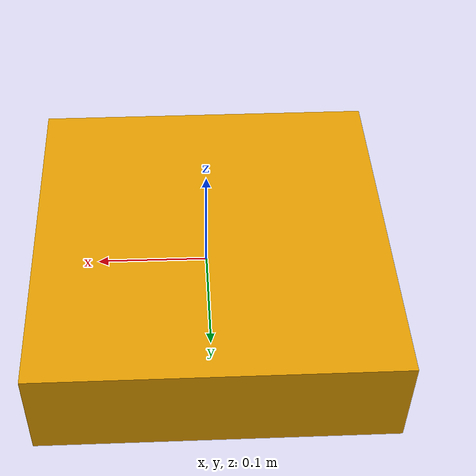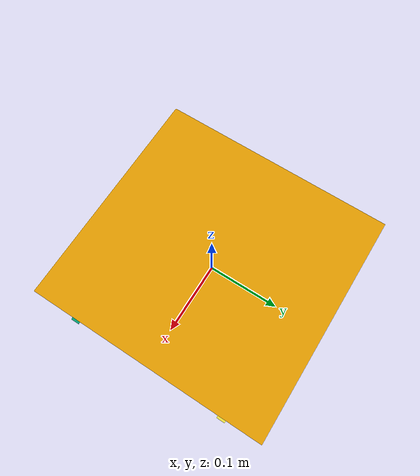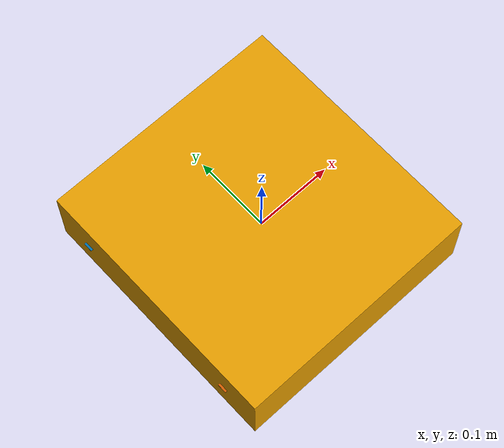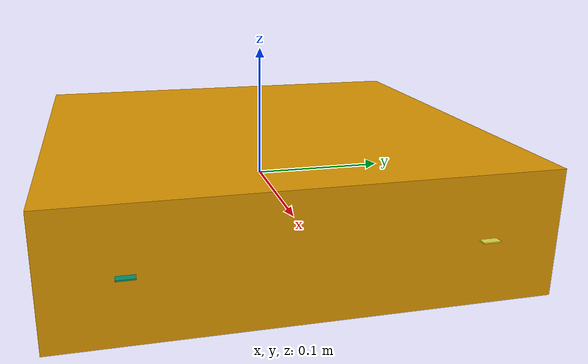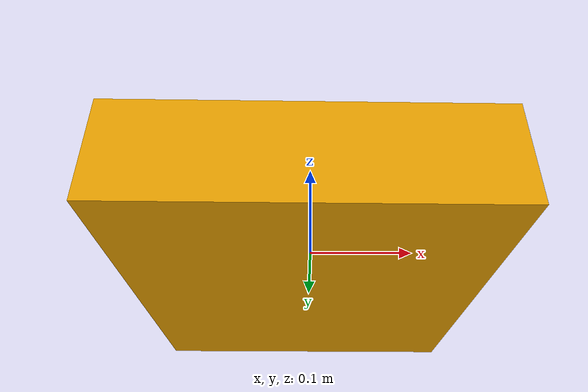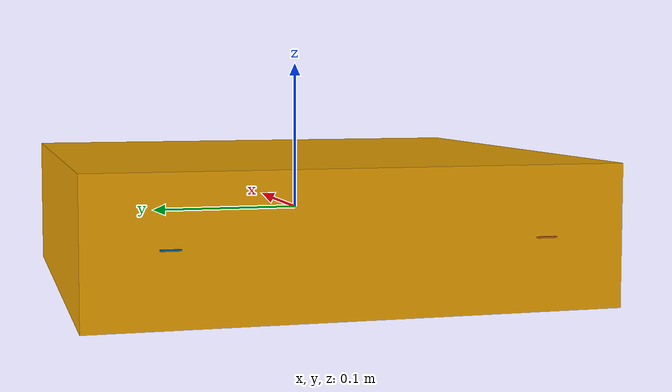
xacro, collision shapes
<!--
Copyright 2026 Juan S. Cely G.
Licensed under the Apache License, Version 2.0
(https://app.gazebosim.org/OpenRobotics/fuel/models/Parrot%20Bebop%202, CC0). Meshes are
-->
<?xml version="1.0"?>
<robot xmlns:xacro="http://www.ros.org/wiki/xacro" name="bebop2">

  <xacro:include filename="common.xacro"/>

  <xacro:arg name="name" default="bebop2"/>
  <xacro:arg name="cameras" default="true"/>
  <xacro:property name="name" value="$(arg name)"/>

  <xacro:property name="mesh_uri"
                  value="https://fuel.gazebosim.org/1.0/OpenRobotics/models/Parrot%20Bebop%202/3/files/meshes"/>

  <!-- Total mass 0.503 kg: frame + 4 propellers -->
  <xacro:property name="rotor_mass" value="0.003"/>
  <xacro:property name="body_mass" value="${0.503 - 4 * rotor_mass}"/>

  <!-- Propeller: radius 0.075 m, modelled as a 0.15 x 0.012 x 0.004 m box -->
  <xacro:property name="prop_length" value="0.15"/>
  <xacro:property name="prop_width" value="0.012"/>
  <xacro:property name="prop_height" value="0.004"/>

  <!-- Motors (MulticopterMotorModel) -->
  <xacro:property name="motor" value="${dict(
    motor_constant=1.9006e-06, moment_constant=0.010891, max_rot_velocity=1250.0,
    time_constant_up=0.0125, time_constant_down=0.025,
    rotor_drag_coefficient=3.96215e-05, rolling_moment_coefficient=4.64449e-06)}"/>

  <!-- ============================== Frame ============================== -->

  <!-- base_link has no inertia (KDL does not support it in the root link); the frame mass
       is in base_inertia, which Gazebo merges into base_link -->
  <link name="base_link">
    <visual>
      <origin xyz="0 0 0" rpy="0 0 0"/>
      <geometry>
        <mesh filename="${mesh_uri}/hull.dae"/>
      </geometry>
    </visual>
    <collision name="body">
      <origin xyz="-0.00424 0.00014 -0.00595" rpy="0 0 0"/>
      <geometry>
        <box size="0.316618 0.330564 0.089582"/>
      </geometry>
    </collision>
  </link>

  <link name="base_inertia">
    <inertial>
      <origin xyz="0 0 0" rpy="0 0 0"/>
      <mass value="${body_mass}"/>
      <inertia ixx="1.805e-3" ixy="-8.619e-7" ixz="1.555e-5"
               iyy="1.764e-3" iyz="3.595e-7" izz="3.328e-3"/>
    </inertial>
  </link>
  <joint name="base_inertia_joint" type="fixed">
    <parent link="base_link"/>
    <child link="base_inertia"/>
    <origin xyz="0 0 0" rpy="0 0 0"/>
  </joint>

  <gazebo reference="base_link">
    <minDepth>0.001</minDepth>
    <maxVel>0</maxVel>
  </gazebo>

  <!-- ============================== Rotors ============================== -->

  <!-- position: fr, fl, rl, rr (name of the propeller mesh) -->
  <xacro:macro name="bebop2_rotor" params="index x y position direction">
    <xacro:pilotaro_rotor robot="${name}" index="${index}" x="${x}" y="${y}" z="-0.00501"
                          direction="${direction}" mass="${rotor_mass}"
                          ixx="${rotor_mass * (prop_width ** 2 + prop_height ** 2) / 12.0}"
                          iyy="${rotor_mass * (prop_length ** 2 + prop_height ** 2) / 12.0}"
                          izz="${rotor_mass * (prop_length ** 2 + prop_width ** 2) / 12.0}"
                          length="${prop_length}" width="${prop_width}" motor="${motor}">
      <visuals>
        <visual>
          <origin xyz="0 0 0" rpy="0 0 0"/>
          <geometry>
            <mesh filename="${mesh_uri}/propeller_${position}.dae"/>
          </geometry>
        </visual>
      </visuals>
    </xacro:pilotaro_rotor>
  </xacro:macro>

  <!-- Parrot order: front right, front left, rear left, rear right -->
  <xacro:bebop2_rotor index="0" x="0.08456" y="-0.11435" position="fr" direction="ccw"/>
  <xacro:bebop2_rotor index="1" x="0.08456" y="0.11463" position="fl" direction="cw"/>
  <xacro:bebop2_rotor index="2" x="-0.09035" y="0.11452" position="rl" direction="ccw"/>
  <xacro:bebop2_rotor index="3" x="-0.09035" y="-0.11423" position="rr" direction="cw"/>

  <!-- ============================== Sensors ============================== -->

  <xacro:pilotaro_imu robot="${name}" rate="250"/>
  <xacro:pilotaro_air_pressure robot="${name}" rate="50"/>
  <xacro:pilotaro_magnetometer robot="${name}" rate="50"/>
  <xacro:pilotaro_navsat robot="${name}" rate="10"/>

  <!-- Ultrasonic altimeter, up to 8 m -->
  <xacro:pilotaro_rangefinder robot="${name}" prefix="sonar" x="0.0" y="0.0" z="-0.046"
                              range_min="0.25" range_max="8.0" rate="30"/>

  <xacro:if value="$(arg cameras)">
    <!-- Front camera: stabilized 1280x720 stream, about 80 deg of horizontal field of view.
         Vertical camera: 320x240 optical flow camera -->
    <xacro:pilotaro_camera robot="${name}" prefix="camera_front" x="0.11" y="0" z="0.0"
                           roll="0" pitch="0" width="1280" height="720" hfov="1.3963" rate="30"/>
    <xacro:pilotaro_camera robot="${name}" prefix="camera_down" x="0.0" y="0" z="-0.046"
                           roll="0" pitch="${pi / 2}" width="320" height="240" hfov="1.1170"
                           rate="30"/>
  </xacro:if>

  <xacro:pilotaro_odometry robot="${name}" rate="250"/>

</robot>

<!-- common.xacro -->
<robot xmlns:xacro="http://www.ros.org/wiki/xacro">

  <!-- Inertia of a solid box -->
  <xacro:macro name="pilotaro_box_inertia" params="mass x y z">
    <inertial>
      <mass value="${mass}"/>
      <inertia ixx="${mass * (y * y + z * z) / 12.0}" ixy="0" ixz="0"
               iyy="${mass * (x * x + z * z) / 12.0}" iyz="0"
               izz="${mass * (x * x + y * y) / 12.0}"/>
    </inertial>
  </xacro:macro>

  <!-- ============================== Rotor ============================== -->

  <xacro:macro name="pilotaro_rotor"
               params="robot index x y z direction mass ixx iyy izz length width motor **visuals">
    <link name="rotor_${index}">
      <inertial>
        <origin xyz="0 0 0" rpy="0 0 0"/>
        <mass value="${mass}"/>
        <inertia ixx="${ixx}" ixy="0" ixz="0" iyy="${iyy}" iyz="0" izz="${izz}"/>
      </inertial>
      <xacro:insert_block name="visuals"/>
      <collision>
        <origin xyz="0 0 0" rpy="0 0 0"/>
        <geometry>
          <box size="${length} ${width} 0.0008461538461538462"/>
        </geometry>
      </collision>
    </link>
    <joint name="rotor_${index}_joint" type="continuous">
      <parent link="base_link"/>
      <child link="rotor_${index}"/>
      <origin xyz="${x} ${y} ${z}" rpy="0 0 0"/>
      <axis xyz="0 0 1"/>
    </joint>
    <gazebo>
      <plugin filename="gz-sim-multicopter-motor-model-system"
              name="gz::sim::systems::MulticopterMotorModel">
        <robotNamespace>${robot}</robotNamespace>
        <jointName>rotor_${index}_joint</jointName>
        <linkName>rotor_${index}</linkName>
        <turningDirection>${direction}</turningDirection>
        <timeConstantUp>${motor['time_constant_up']}</timeConstantUp>
        <timeConstantDown>${motor['time_constant_down']}</timeConstantDown>
        <maxRotVelocity>${motor['max_rot_velocity']}</maxRotVelocity>
        <motorConstant>${motor['motor_constant']}</motorConstant>
        <momentConstant>${motor['moment_constant']}</momentConstant>
        <commandSubTopic>command/motor_speed</commandSubTopic>
        <actuator_number>${index}</actuator_number>
        <rotorDragCoefficient>${motor['rotor_drag_coefficient']}</rotorDragCoefficient>
        <rollingMomentCoefficient>${motor['rolling_moment_coefficient']}</rollingMomentCoefficient>
        <motorSpeedPubTopic>motor_speed/${index}</motorSpeedPubTopic>
        <rotorVelocitySlowdownSim>10</rotorVelocitySlowdownSim>
        <motorType>velocity</motorType>
      </plugin>
    </gazebo>
  </xacro:macro>

  <!-- ============================== Thruster ============================== -->

  <xacro:macro name="pilotaro_thruster"
               params="robot index x y z roll pitch yaw direction thruster **visuals">
    <link name="thruster_${index}">
      <inertial>
        <origin xyz="0 0 0" rpy="0 0 0"/>
        <mass value="0.002"/>
        <inertia ixx="0.001" ixy="0" ixz="0" iyy="0.001" iyz="0" izz="0.001"/>
      </inertial>
      <xacro:insert_block name="visuals"/>
    </link>
    <joint name="thruster_${index}_joint" type="continuous">
      <parent link="base_link"/>
      <child link="thruster_${index}"/>
      <origin xyz="${x} ${y} ${z}" rpy="${roll} ${pitch} ${yaw}"/>
      <axis xyz="0 0 1"/>
    </joint>
    <gazebo>
      <plugin filename="gz-sim-thruster-system" name="gz::sim::systems::Thruster">
        <namespace>${robot}</namespace>
        <joint_name>thruster_${index}_joint</joint_name>
        <topic>thruster_${index}/cmd_thrust</topic>
        <thrust_coefficient>${direction * thruster['thrust_coefficient']}</thrust_coefficient>
        <fluid_density>${thruster['fluid_density']}</fluid_density>
        <propeller_diameter>${thruster['propeller_diameter']}</propeller_diameter>
        <velocity_control>true</velocity_control>
        <max_thrust_cmd>${thruster['max_thrust']}</max_thrust_cmd>
        <min_thrust_cmd>${-thruster['max_thrust']}</min_thrust_cmd>
      </plugin>
    </gazebo>
  </xacro:macro>

  <!-- ============================== Hydrodynamics ============================== -->

  <xacro:macro name="pilotaro_hydrodynamics" params="link hydro">
    <gazebo>
      <plugin filename="gz-sim-hydrodynamics-system" name="gz::sim::systems::Hydrodynamics">
        <link_name>${link}</link_name>
        <water_density>${hydro['water_density']}</water_density>
        <disable_added_mass>true</disable_added_mass>
        <xDotU>${hydro['xDotU']}</xDotU>
        <yDotV>${hydro['yDotV']}</yDotV>
        <zDotW>${hydro['zDotW']}</zDotW>
        <kDotP>${hydro['kDotP']}</kDotP>
        <mDotQ>${hydro['mDotQ']}</mDotQ>
        <nDotR>${hydro['nDotR']}</nDotR>
        <xU>${hydro['xU']}</xU>
        <yV>${hydro['yV']}</yV>
        <zW>${hydro['zW']}</zW>
        <kP>${hydro['kP']}</kP>
        <mQ>${hydro['mQ']}</mQ>
        <nR>${hydro['nR']}</nR>
        <xUabsU>${hydro['xUabsU']}</xUabsU>
        <yVabsV>${hydro['yVabsV']}</yVabsV>
        <zWabsW>${hydro['zWabsW']}</zWabsW>
        <kPabsP>${hydro['kPabsP']}</kPabsP>
        <mQabsQ>${hydro['mQabsQ']}</mQabsQ>
        <nRabsR>${hydro['nRabsR']}</nRabsR>
      </plugin>
    </gazebo>
  </xacro:macro>

  <!-- ============================== IMU ============================== -->

  <xacro:macro name="pilotaro_imu_noise"
               params="stddev bias_mean bias_stddev dynamic_bias_stddev correlation_time precision">
    <noise type="gaussian">
      <mean>0</mean>
      <stddev>${stddev}</stddev>
      <bias_mean>${bias_mean}</bias_mean>
      <bias_stddev>${bias_stddev}</bias_stddev>
      <dynamic_bias_stddev>${dynamic_bias_stddev}</dynamic_bias_stddev>
      <dynamic_bias_correlation_time>${correlation_time}</dynamic_bias_correlation_time>
      <precision>${precision}</precision>
    </noise>
  </xacro:macro>
  <xacro:macro name="pilotaro_gyro_noise">
    <xacro:pilotaro_imu_noise stddev="0.009" bias_mean="0.00075" bias_stddev="0.005"
                              dynamic_bias_stddev="0.00002" correlation_time="400.0"
                              precision="0.00025"/>
  </xacro:macro>
  <xacro:macro name="pilotaro_accel_noise">
    <xacro:pilotaro_imu_noise stddev="0.021" bias_mean="0.05" bias_stddev="0.0075"
                              dynamic_bias_stddev="0.000375" correlation_time="175.0"
                              precision="0.005"/>
  </xacro:macro>

  <xacro:macro name="pilotaro_imu" params="robot rate:=250">
    <link name="imu_link"/>
    <joint name="imu_joint" type="fixed">
      <parent link="base_link"/>
      <child link="imu_link"/>
      <origin xyz="0 0 0" rpy="0 0 0"/>
    </joint>
    <gazebo reference="base_link">
      <sensor name="imu" type="imu">
        <always_on>1</always_on>
        <update_rate>${rate}</update_rate>
        <topic>/${robot}/imu</topic>
        <gz_frame_id>${robot}/imu_link</gz_frame_id>
        <imu>
          <enable_orientation>0</enable_orientation>
          <angular_velocity>
            <x><xacro:pilotaro_gyro_noise/></x>
            <y><xacro:pilotaro_gyro_noise/></y>
            <z><xacro:pilotaro_gyro_noise/></z>
          </angular_velocity>
          <linear_acceleration>
            <x><xacro:pilotaro_accel_noise/></x>
            <y><xacro:pilotaro_accel_noise/></y>
            <z><xacro:pilotaro_accel_noise/></z>
          </linear_acceleration>
        </imu>
      </sensor>
    </gazebo>
  </xacro:macro>

  <!-- ============================== Barometer, magnetometer, GPS ============================== -->

  <xacro:macro name="pilotaro_air_pressure" params="robot rate:=50">
    <gazebo reference="base_link">
      <sensor name="air_pressure" type="air_pressure">
        <always_on>1</always_on>
        <update_rate>${rate}</update_rate>
        <topic>/${robot}/air_pressure</topic>
        <gz_frame_id>${robot}/base_link</gz_frame_id>
        <air_pressure>
          <reference_altitude>0</reference_altitude>
          <pressure>
            <noise type="gaussian">
              <mean>0</mean>
              <stddev>0.01</stddev>
            </noise>
          </pressure>
        </air_pressure>
      </sensor>
    </gazebo>
  </xacro:macro>

  <xacro:macro name="pilotaro_magnetometer" params="robot rate:=50">
    <gazebo reference="base_link">
      <sensor name="magnetometer" type="magnetometer">
        <always_on>1</always_on>
        <update_rate>${rate}</update_rate>
        <topic>/${robot}/magnetometer</topic>
        <gz_frame_id>${robot}/base_link</gz_frame_id>
        <magnetometer>
          <x><noise type="gaussian"><mean>0.000000080</mean><bias_mean>0.000000400</bias_mean></noise></x>
          <y><noise type="gaussian"><mean>0.000000080</mean><bias_mean>0.000000400</bias_mean></noise></y>
          <z><noise type="gaussian"><mean>0.000000080</mean><bias_mean>0.000000400</bias_mean></noise></z>
        </magnetometer>
      </sensor>
    </gazebo>
  </xacro:macro>

  <xacro:macro name="pilotaro_navsat" params="robot rate:=10">
    <gazebo reference="base_link">
      <sensor name="navsat" type="navsat">
        <always_on>1</always_on>
        <update_rate>${rate}</update_rate>
        <topic>/${robot}/navsat</topic>
        <gz_frame_id>${robot}/base_link</gz_frame_id>
        <navsat>
          <position_sensing>
            <!-- gz applies the horizontal noise to latitude/longitude in degrees:
                 4.5e-6 deg ~ 0.5 m. The vertical noise is in meters -->
            <horizontal>
              <noise type="gaussian"><mean>0.0</mean><stddev>4.5e-6</stddev></noise>
            </horizontal>
            <vertical>
              <noise type="gaussian"><mean>0.0</mean><stddev>1.0</stddev></noise>
            </vertical>
          </position_sensing>
          <velocity_sensing>
            <horizontal>
              <noise type="gaussian"><mean>0.0</mean><stddev>0.1</stddev></noise>
            </horizontal>
            <vertical>
              <noise type="gaussian"><mean>0.0</mean><stddev>0.1</stddev></noise>
            </vertical>
          </velocity_sensing>
        </navsat>
      </sensor>
    </gazebo>
  </xacro:macro>

  <!-- ============================== Camera ============================== -->

  <xacro:macro name="pilotaro_camera"
               params="robot prefix x y z roll pitch width height hfov rate mass:=0.0 size:=0.0">
    <link name="${prefix}_link">
      <xacro:if value="${mass > 0.0}">
        <xacro:pilotaro_box_inertia mass="${mass}" x="${size}" y="${2.5 * size}" z="${size}"/>
      </xacro:if>
      <xacro:if value="${size > 0.0}">
        <visual>
          <geometry>
            <box size="${size} ${2.5 * size} ${size}"/>
          </geometry>
          <material name="black">
            <color rgba="0.05 0.05 0.05 1"/>
          </material>
        </visual>
      </xacro:if>
    </link>
    <joint name="${prefix}_joint" type="fixed">
      <parent link="base_link"/>
      <child link="${prefix}_link"/>
      <origin xyz="${x} ${y} ${z}" rpy="${roll} ${pitch} 0"/>
    </joint>
    <gazebo reference="base_link">
      <sensor name="${prefix}" type="camera">
        <pose>${x} ${y} ${z} ${roll} ${pitch} 0</pose>
        <always_on>1</always_on>
        <update_rate>${rate}</update_rate>
        <topic>/${robot}/${prefix}/image</topic>
        <gz_frame_id>${robot}/${prefix}_link</gz_frame_id>
        <camera name="${prefix}">
          <camera_info_topic>/${robot}/${prefix}/camera_info</camera_info_topic>
          <horizontal_fov>${hfov}</horizontal_fov>
          <image>
            <width>${width}</width>
            <height>${height}</height>
            <format>R8G8B8</format>
          </image>
          <clip>
            <near>0.05</near>
            <far>300</far>
          </clip>
          <noise>
            <type>gaussian</type>
            <mean>0</mean>
            <stddev>0.007</stddev>
          </noise>
        </camera>
      </sensor>
    </gazebo>
  </xacro:macro>

  <!-- ============================== Rangefinder ============================== -->

  <xacro:macro name="pilotaro_rangefinder" params="robot prefix x y z range_min range_max rate:=30">
    <link name="${prefix}_link"/>
    <joint name="${prefix}_joint" type="fixed">
      <parent link="base_link"/>
      <child link="${prefix}_link"/>
      <origin xyz="${x} ${y} ${z}" rpy="0 ${pi / 2} 0"/>
    </joint>
    <gazebo reference="base_link">
      <sensor name="${prefix}" type="gpu_lidar">
        <pose>${x} ${y} ${z} 0 ${pi / 2} 0</pose>
        <always_on>1</always_on>
        <update_rate>${rate}</update_rate>
        <topic>/${robot}/${prefix}</topic>
        <gz_frame_id>${robot}/${prefix}_link</gz_frame_id>
        <lidar>
          <scan>
            <horizontal>
              <samples>1</samples>
              <resolution>1</resolution>
              <min_angle>0</min_angle>
              <max_angle>0</max_angle>
            </horizontal>
          </scan>
          <range>
            <min>${range_min}</min>
            <max>${range_max}</max>
            <resolution>0.01</resolution>
          </range>
          <noise>
            <type>gaussian</type>
            <mean>0.0</mean>
            <stddev>0.01</stddev>
          </noise>
        </lidar>
      </sensor>
    </gazebo>
  </xacro:macro>

  <!-- ============================== Odometry ============================== -->

  <xacro:macro name="pilotaro_odometry" params="robot rate:=250">
    <gazebo>
      <plugin filename="gz-sim-odometry-publisher-system"
              name="gz::sim::systems::OdometryPublisher">
        <dimensions>3</dimensions>
        <odom_topic>/${robot}/odometry</odom_topic>
        <odom_frame>${robot}/odom</odom_frame>
        <robot_base_frame>${robot}/base_link</robot_base_frame>
        <odom_publish_frequency>${rate}</odom_publish_frequency>
      </plugin>
    </gazebo>
  </xacro:macro>

</robot>
